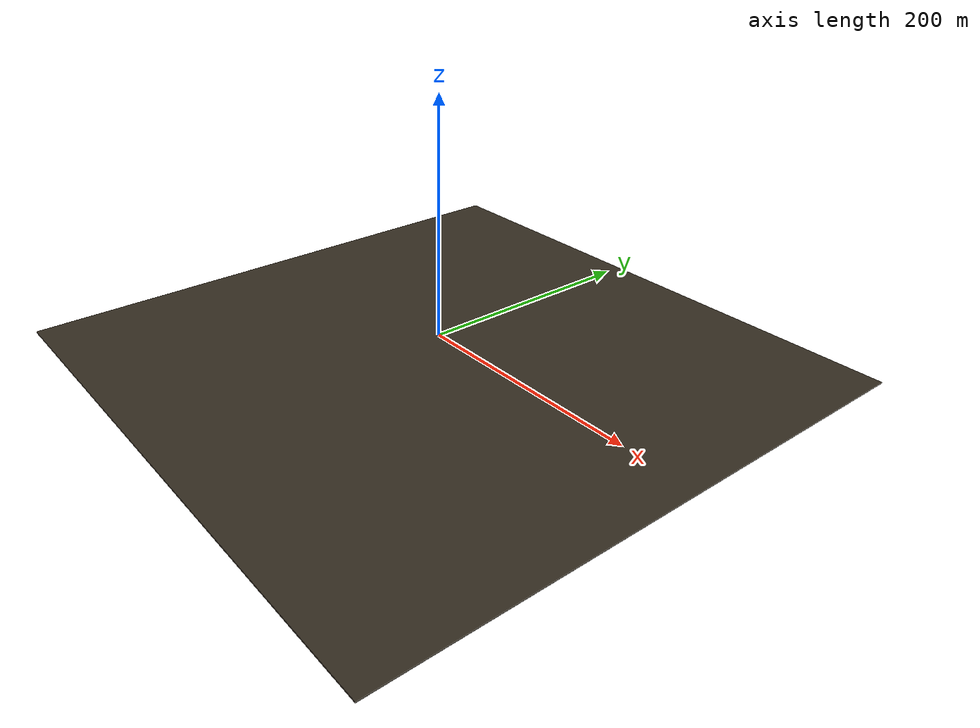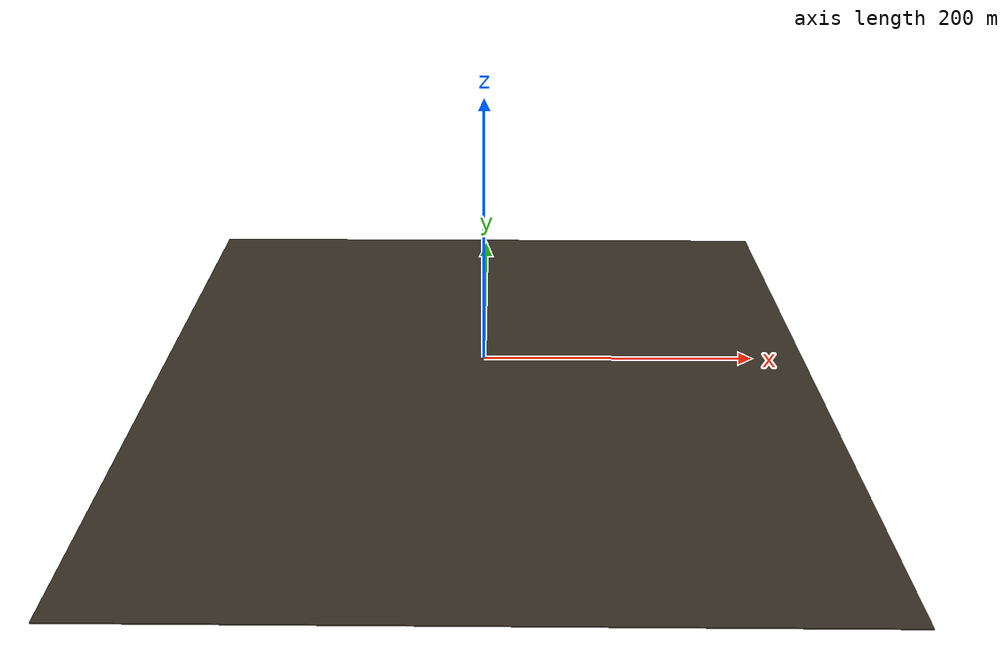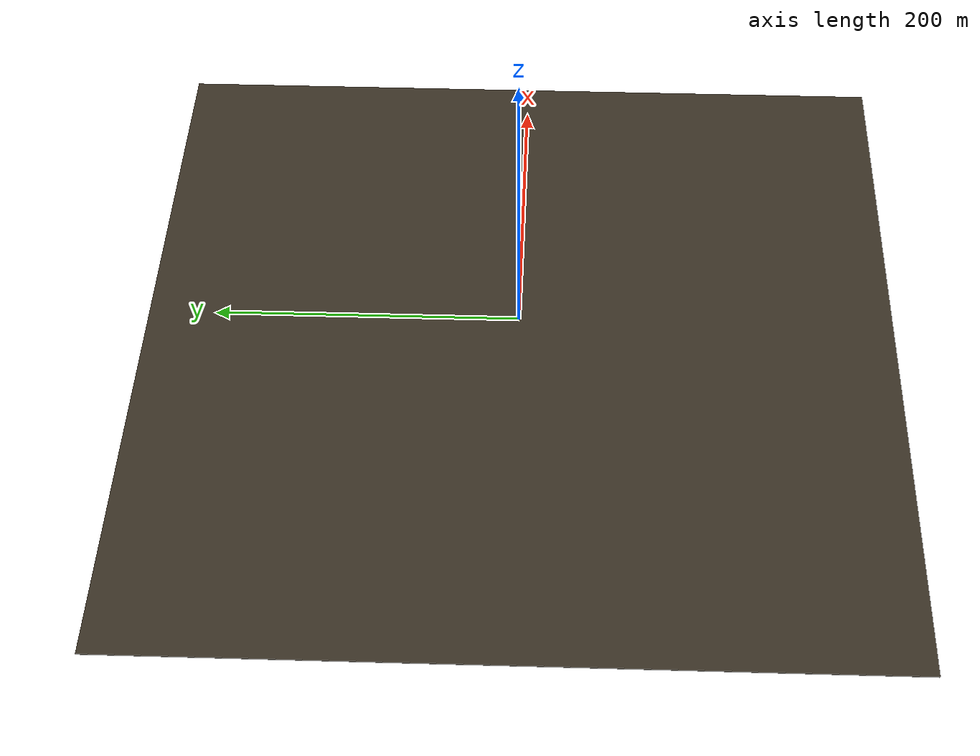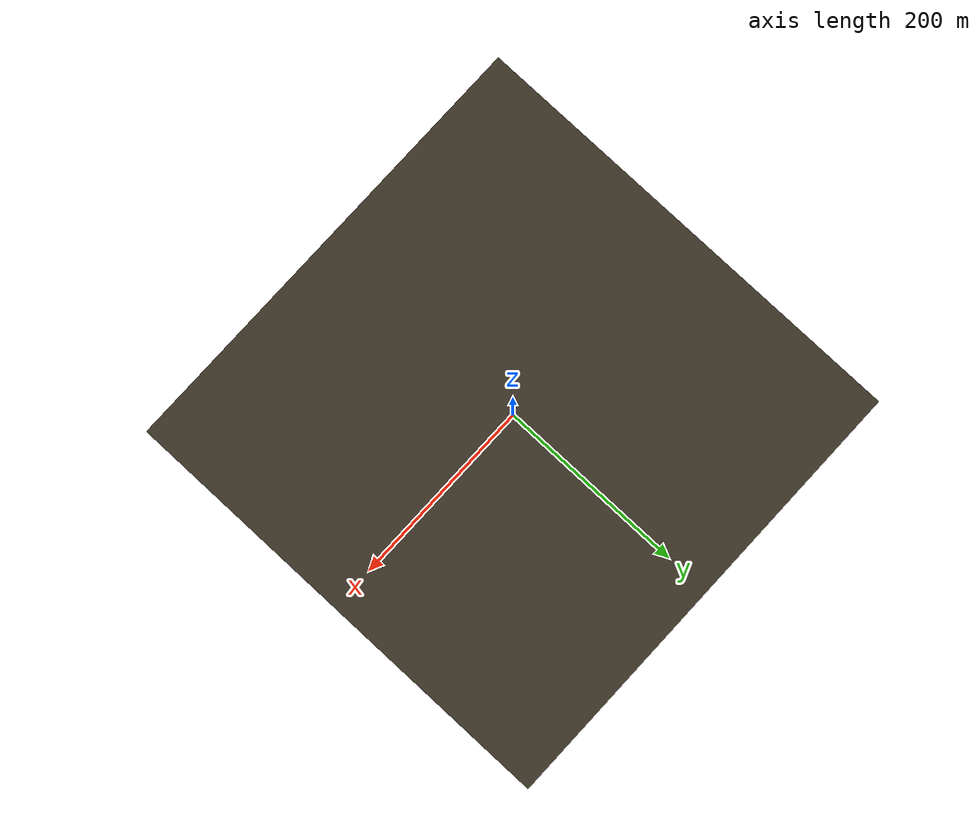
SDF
<?xml version="1.0" encoding="UTF-8"?>
<sdf version="1.9">
  <world name="boat">
    <physics type="ode">
      <max_step_size>0.002</max_step_size>
      <real_time_factor>1.0</real_time_factor>
      <real_time_update_rate>500</real_time_update_rate>
    </physics>

    <plugin name="gz::sim::systems::Physics" filename="gz-sim-physics-system"/>
    <plugin name="gz::sim::systems::UserCommands" filename="gz-sim-user-commands-system"/>
    <plugin name="gz::sim::systems::SceneBroadcaster" filename="gz-sim-scene-broadcaster-system"/>
    <plugin name="gz::sim::systems::Contact" filename="gz-sim-contact-system"/>
    <plugin name="gz::sim::systems::Imu" filename="gz-sim-imu-system"/>
    <plugin name="gz::sim::systems::AirPressure" filename="gz-sim-air-pressure-system"/>
    <plugin name="gz::sim::systems::NavSat" filename="gz-sim-navsat-system"/>
    <plugin name="gz::sim::systems::Magnetometer" filename="gz-sim-magnetometer-system"/>
    <plugin name="gz::sim::systems::Sensors" filename="gz-sim-sensors-system">
      <render_engine>ogre2</render_engine>
    </plugin>
    <plugin filename="libBuoyancySystemPlugin.so" name="gz::sim::systems::BuoyancySystem">
      <basic_buoyancy>1</basic_buoyancy>
    </plugin>

    <gravity>0 0 -9.8</gravity>
    <magnetic_field>6e-06 2.3e-05 -4.2e-05</magnetic_field>
    <atmosphere type="adiabatic"/>

    <scene>
      <grid>false</grid>
      <ambient>0.42 0.48 0.55 1</ambient>
      <background>0.68 0.78 0.9 1</background>
      <shadows>true</shadows>
    </scene>

    <model name="water_surface">
      <static>true</static>
      <link name="link">
        <visual name="visual">
          <cast_shadows>false</cast_shadows>
          <geometry>
            <plane>
              <normal>0 0 1</normal>
              <size>500 500</size>
            </plane>
          </geometry>
          <material>
            <ambient>0.05 0.25 0.45 0.55</ambient>
            <diffuse>0.05 0.35 0.7 0.55</diffuse>
            <specular>0.9 0.95 1.0 0.75</specular>
          </material>
        </visual>
      </link>
      <pose>0 0 0 0 0 0</pose>
    </model>

    <model name="seafloor">
      <static>true</static>
      <link name="link">
        <visual name="visual">
          <geometry>
            <box>
              <size>500 500 1</size>
            </box>
          </geometry>
          <material>
            <ambient>0.16 0.13 0.1 1</ambient>
            <diffuse>0.22 0.19 0.14 1</diffuse>
            <specular>0.05 0.05 0.05 1</specular>
          </material>
        </visual>
      </link>
      <pose>0 0 -20.5 0 0 0</pose>
    </model>

    <light name="sunUTC" type="directional">
      <pose>0 0 500 0 0 0</pose>
      <cast_shadows>true</cast_shadows>
      <intensity>1</intensity>
      <direction>0.001 0.625 -0.78</direction>
      <diffuse>0.904 0.904 0.904 1</diffuse>
      <specular>0.271 0.271 0.271 1</specular>
      <attenuation>
        <range>2000</range>
        <linear>0</linear>
        <constant>1</constant>
        <quadratic>0</quadratic>
      </attenuation>
      <spot>
        <inner_angle>0</inner_angle>
        <outer_angle>0</outer_angle>
        <falloff>0</falloff>
      </spot>
    </light>

    <spherical_coordinates>
      <surface_model>EARTH_WGS84</surface_model>
      <world_frame_orientation>ENU</world_frame_orientation>
      <latitude_deg>47.397971057728974</latitude_deg>
      <longitude_deg>8.546163739800146</longitude_deg>
      <elevation>0</elevation>
    </spherical_coordinates>
  </world>
</sdf>
